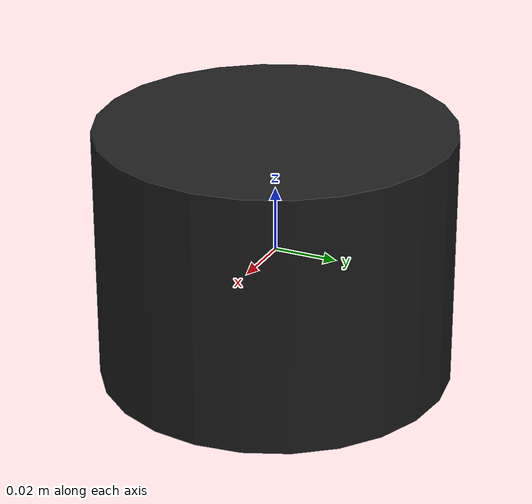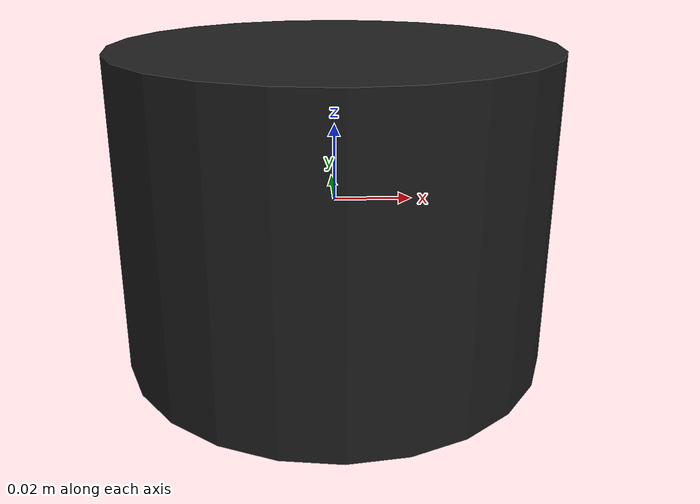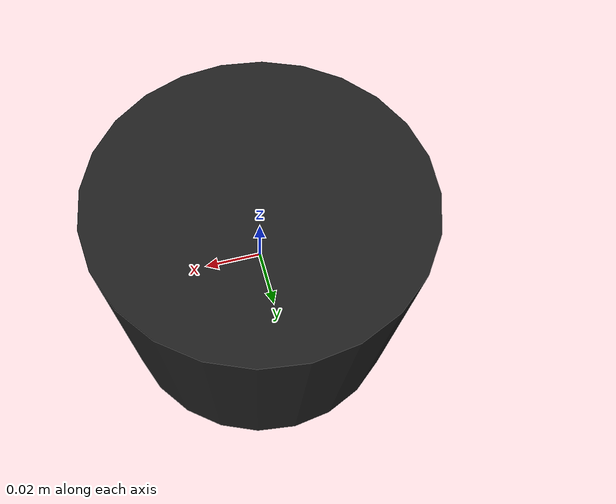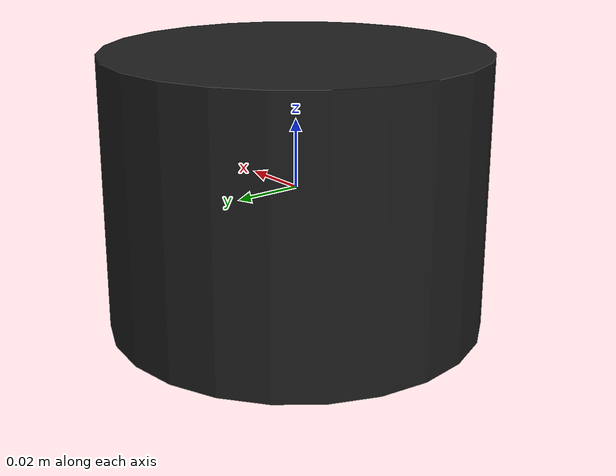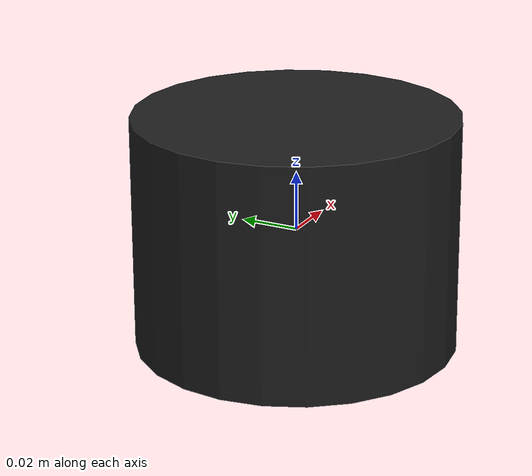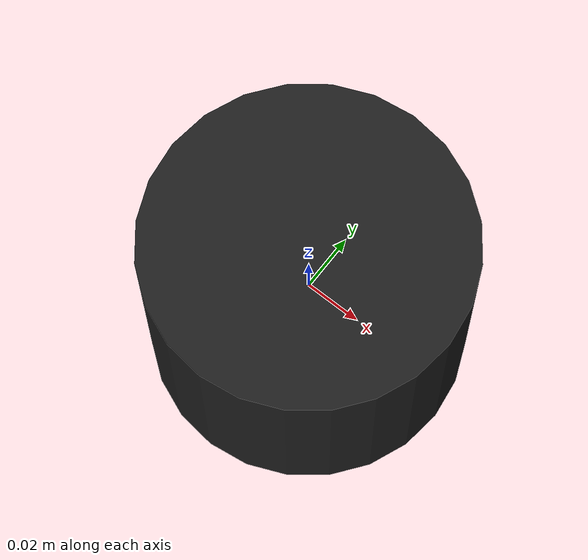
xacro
<?xml version="1.0"?>
<robot xmlns:xacro="http://www.ros.org/wiki/xacro" name="lidar">

  <link name="lidar">
    <visual>
      <origin xyz="0 0 0" rpy="0 0 0"/>
      <geometry>
        <cylinder radius="0.055" length="0.08"/>
      </geometry>
    </visual>
    <collision>
      <origin xyz="0 0 0" rpy="0 0 0"/>
      <geometry>
        <cylinder radius="0.055" length="0.08"/>
      </geometry>
    </collision>
    <inertial>
      <mass value="1e-5"/>
      <origin xyz="0 0 0" rpy="0 0 0"/>
      <inertia ixx="1e-6" ixy="0" ixz="0" iyy="1e-6" iyz="0" izz="1e-6"/>
    </inertial>
  </link>

  <gazebo reference="lidar">
    <material>Gazebo/Black</material>
    <gravity>false</gravity>
    <kinematic>true</kinematic>
    <sensor type="ray" name="lidar">
      <pose>0 0 0 0 0 0</pose>
      <visualize>false</visualize>
      <always_on>true</always_on>
      <update_rate>5.0</update_rate>
      <ray>
        <scan>
          <horizontal>
            <samples>350</samples>
            <resolution>1</resolution>
            <min_angle>-3.14159265</min_angle>
            <max_angle>3.14159265</max_angle>
          </horizontal>
          <vertical>
            <samples>16</samples>
            <resolution>1</resolution>
            <min_angle>-0.26179939</min_angle>
            <max_angle>0.26179939</max_angle>
          </vertical>
        </scan>
        <range>
          <min>0.1</min>
          <max>80.0</max>
          <resolution>0.01</resolution>
        </range>
        <noise>
          <type>gaussian</type>
          <mean>0.0</mean>
          <stddev>0.008</stddev>
        </noise>
      </ray>
      <plugin name="lidar_pointcloud" filename="libgazebo_ros_ray_sensor.so">
        <ros>
          <namespace>/</namespace>
          <remapping>~/out:=/velodyne_points</remapping>
        </ros>
        <output_type>sensor_msgs/PointCloud2</output_type>
        <frame_name>lidar</frame_name>
      </plugin>
    </sensor>
  </gazebo>

</robot>
